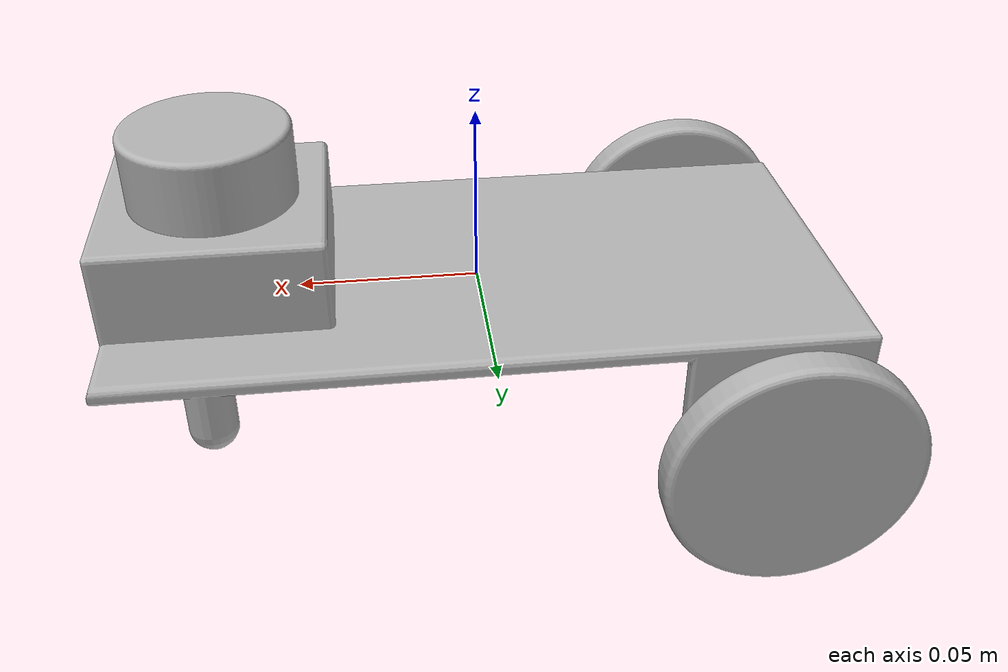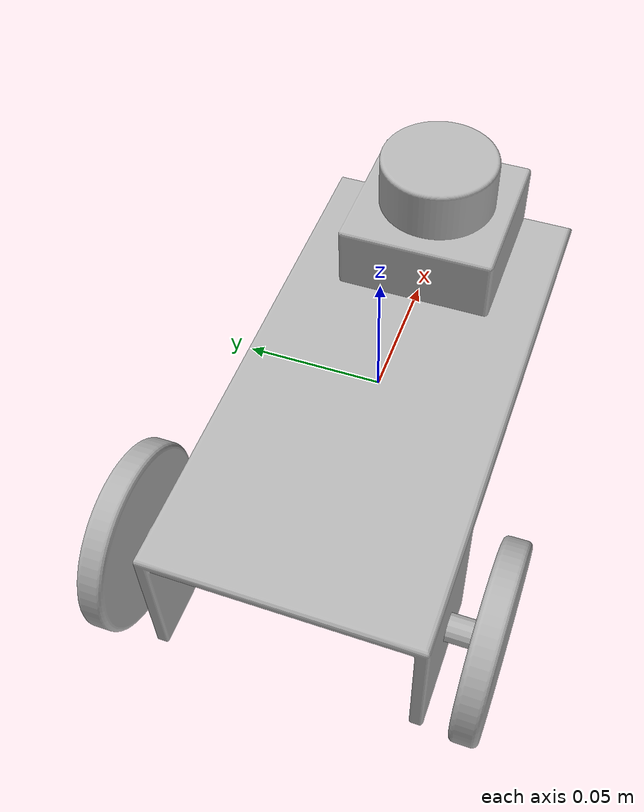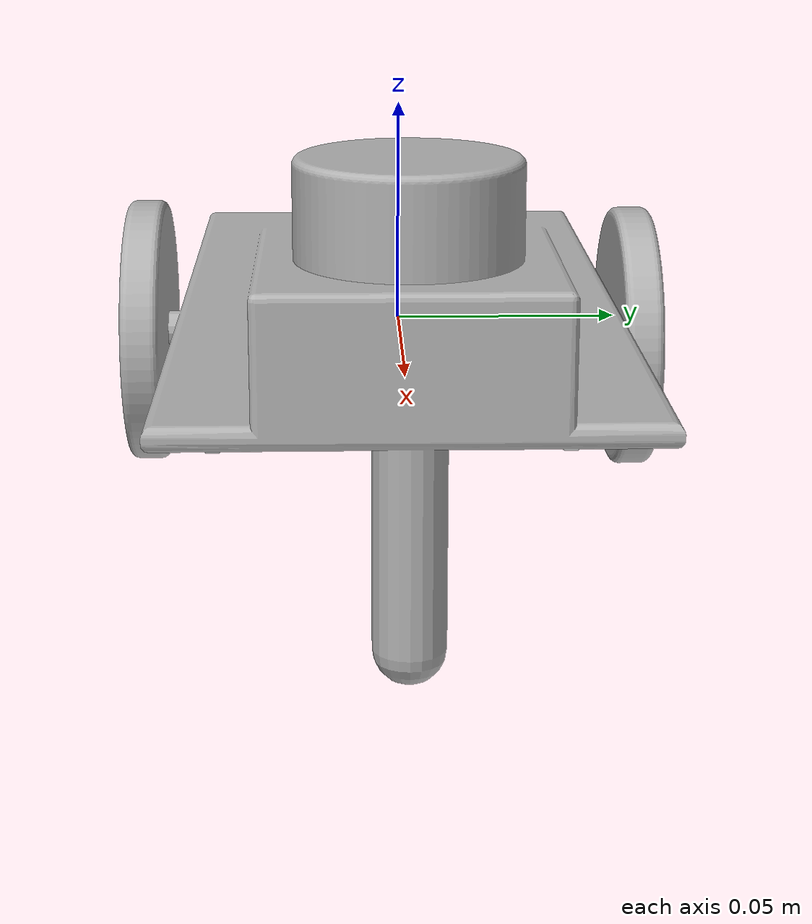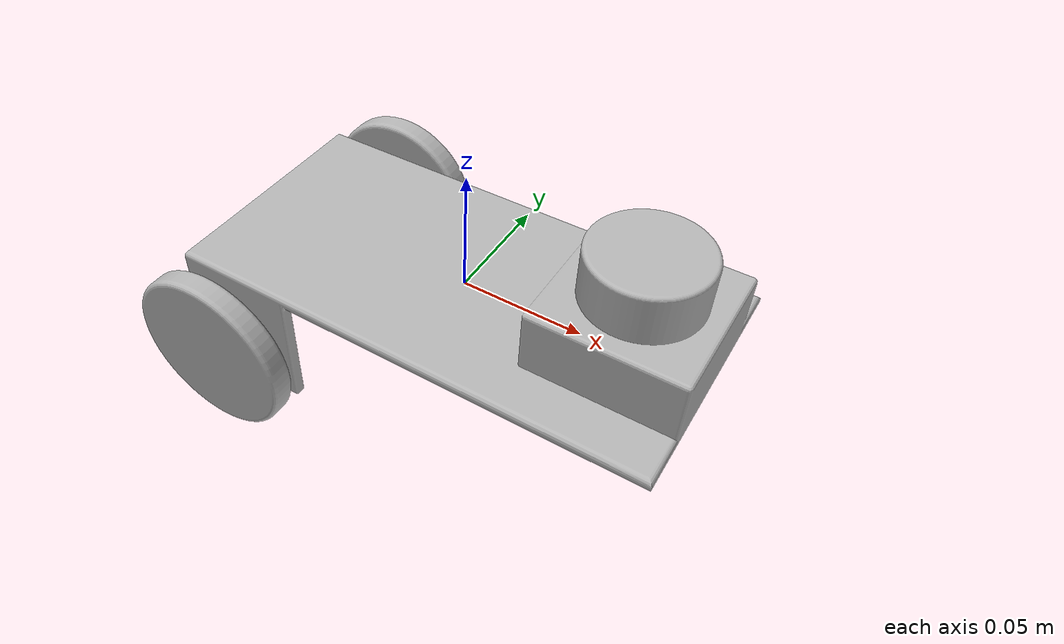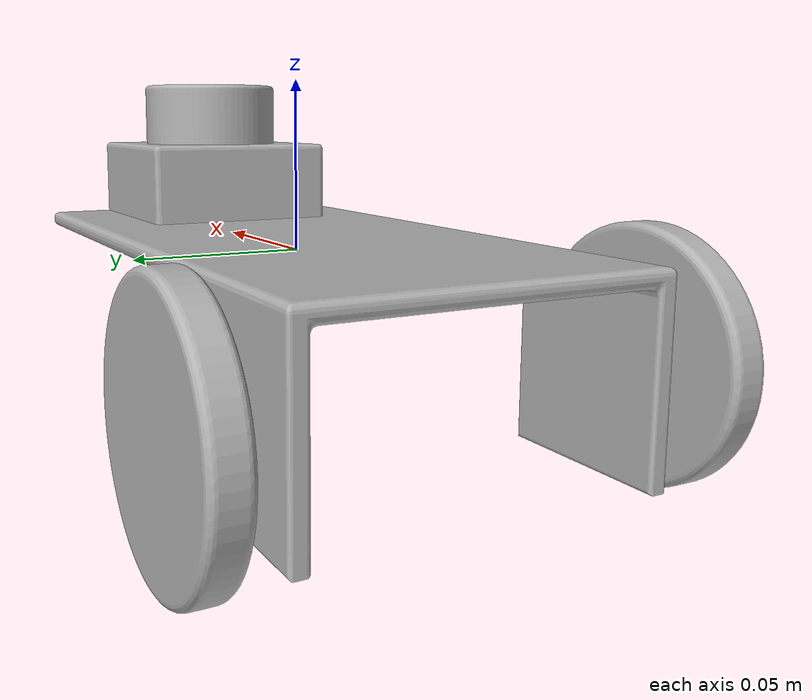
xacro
<?xml version="1.0" ?>
<robot name="roslogh" xmlns:xacro="http://www.ros.org/wiki/xacro">

<xacro:include filename="$(find roslogh_description)/urdf/materials.xacro" />
<xacro:include filename="$(find roslogh_description)/urdf/roslogh.trans" />
<xacro:include filename="$(find roslogh_description)/urdf/roslogh.gazebo" />
<link name="base_link">
  <inertial>
    <origin xyz="0.02242999577947144 -6.8460879496483205e-09 0.004077074626700003" rpy="0 0 0"/>
    <mass value="1.7647631390827576"/>
    <inertia ixx="0.001798" iyy="0.007507" izz="0.008373" ixy="-0.0" iyz="1e-06" ixz="-0.000936"/>
  </inertial>
  <visual>
    <origin xyz="0 0 0" rpy="0 0 0"/>
    <geometry>
      <mesh filename="package://roslogh_description/meshes/base_link.stl" scale="0.001 0.001 0.001"/>
    </geometry>
    <material name="silver"/>
  </visual>
  <collision>
    <origin xyz="0 0 0" rpy="0 0 0"/>
    <geometry>
      <mesh filename="package://roslogh_description/meshes/base_link.stl" scale="0.001 0.001 0.001"/>
    </geometry>
  </collision>
</link>

<link name="left_1">
  <inertial>
    <origin xyz="0.0 0.0050000000000000044 -6.938893903907228e-18" rpy="0 0 0"/>
    <mass value="0.299177486388208"/>
    <inertia ixx="9.3e-05" iyy="0.000182" izz="9.3e-05" ixy="0.0" iyz="0.0" ixz="0.0"/>
  </inertial>
  <visual>
    <origin xyz="0.075 -0.06 0.025" rpy="0 0 0"/>
    <geometry>
      <mesh filename="package://roslogh_description/meshes/left_1.stl" scale="0.001 0.001 0.001"/>
    </geometry>
    <material name="silver"/>
  </visual>
  <collision>
    <origin xyz="0.075 -0.06 0.025" rpy="0 0 0"/>
    <geometry>
      <mesh filename="package://roslogh_description/meshes/left_1.stl" scale="0.001 0.001 0.001"/>
    </geometry>
  </collision>
</link>

<link name="right_1">
  <inertial>
    <origin xyz="-2.7755575615628914e-17 -0.0050000000000000044 0.0" rpy="0 0 0"/>
    <mass value="0.2991774863882081"/>
    <inertia ixx="9.3e-05" iyy="0.000182" izz="9.3e-05" ixy="0.0" iyz="0.0" ixz="-0.0"/>
  </inertial>
  <visual>
    <origin xyz="0.075 0.06 0.0225" rpy="0 0 0"/>
    <geometry>
      <mesh filename="package://roslogh_description/meshes/right_1.stl" scale="0.001 0.001 0.001"/>
    </geometry>
    <material name="silver"/>
  </visual>
  <collision>
    <origin xyz="0.075 0.06 0.0225" rpy="0 0 0"/>
    <geometry>
      <mesh filename="package://roslogh_description/meshes/right_1.stl" scale="0.001 0.001 0.001"/>
    </geometry>
  </collision>
</link>

<link name="lidar_1">
  <inertial>
    <origin xyz="-4.163336342344337e-17 0.0 0.009979528865946961" rpy="0 0 0"/>
    <mass value="0.249169834758972"/>
    <inertia ixx="4e-05" iyy="4e-05" izz="6.3e-05" ixy="-0.0" iyz="0.0" ixz="-0.0"/>
  </inertial>
  <visual>
    <origin xyz="-0.07 -0.0 -0.03" rpy="0 0 0"/>
    <geometry>
      <mesh filename="package://roslogh_description/meshes/lidar_1.stl" scale="0.001 0.001 0.001"/>
    </geometry>
    <material name="silver"/>
  </visual>
  <collision>
    <origin xyz="-0.07 -0.0 -0.03" rpy="0 0 0"/>
    <geometry>
      <mesh filename="package://roslogh_description/meshes/lidar_1.stl" scale="0.001 0.001 0.001"/>
    </geometry>
  </collision>
</link>

<joint name="Rev1" type="continuous">
  <origin xyz="-0.075 0.06 -0.025" rpy="0 0 0"/>
  <parent link="base_link"/>
  <child link="left_1"/>
  <axis xyz="0.0 1.0 0.0"/>
</joint>

<joint name="Rev2" type="continuous">
  <origin xyz="-0.075 -0.06 -0.0225" rpy="0 0 0"/>
  <parent link="base_link"/>
  <child link="right_1"/>
  <axis xyz="0.0 1.0 0.0"/>
</joint>

<joint name="Rigid3" type="fixed">
  <origin xyz="0.07 0.0 0.03" rpy="0 0 0"/>
  <parent link="base_link"/>
  <child link="lidar_1"/>
</joint>

</robot>

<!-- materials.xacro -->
<robot name="roslogh" xmlns:xacro="http://www.ros.org/wiki/xacro" >

<material name="silver">
  <color rgba="0.700 0.700 0.700 1.000"/>
</material>

</robot>

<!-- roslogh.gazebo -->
<robot name="roslogh" xmlns:xacro="http://www.ros.org/wiki/xacro" >

<xacro:property name="body_color" value="Gazebo/Silver" />

<gazebo>
  <plugin name="control" filename="libgazebo_ros_control.so"/>
</gazebo>
<gazebo reference="base_link">
  <material>${body_color}</material>
  <mu1>3500</mu1>
  <mu2>3500</mu2>
  <selfCollide>true</selfCollide>
  <gravity>true</gravity>
</gazebo>

<gazebo reference="left_1">
  <material>${body_color}</material>
  <mu1>3500</mu1>
  <mu2>3500</mu2>
  <selfCollide>true</selfCollide>
</gazebo>

<gazebo reference="right_1">
  <material>${body_color}</material>
  <mu1>3500</mu1>
  <mu2>3500</mu2>
  <selfCollide>true</selfCollide>
</gazebo>

<gazebo reference="lidar_1">
  <material>${body_color}</material>
  <mu1>0.2</mu1>
  <mu2>0.2</mu2>
  <selfCollide>true</selfCollide>
</gazebo>
  <gazebo>
  <plugin name="differential_drive_controller" filename="libgazebo_ros_diff_drive.so">

    <!-- Plugin update rate in Hz -->
    <updateRate>${1000}</updateRate>

    <!-- Name of left joint, defaults to `left_joint` -->
    <leftJoint>Rev1</leftJoint>

    <!-- Name of right joint, defaults to `right_joint` -->
    <rightJoint>Rev2</rightJoint>

    <!-- The distance from the center of one wheel to the other, in meters, defaults to 0.34 m -->
    <wheelSeparation>0.5380</wheelSeparation>

    <!-- Diameter of the wheels, in meters, defaults to 0.15 m -->
    <wheelDiameter>0.2410</wheelDiameter>

    <!-- Wheel acceleration, in rad/s^2, defaults to 0.0 rad/s^2 -->
    <wheelAcceleration>1.0</wheelAcceleration>

    <!-- Maximum torque which the wheels can produce, in Nm, defaults to 5 Nm -->
    <wheelTorque>20</wheelTorque>

    <!-- Topic to receive geometry_msgs/Twist message commands, defaults to `cmd_vel` -->
    <commandTopic>cmd_vel</commandTopic>

    <!-- Topic to publish nav_msgs/Odometry messages, defaults to `odom` -->
    <odometryTopic>odom</odometryTopic>

    <!-- Odometry frame, defaults to `odom` -->
    <odometryFrame>odom</odometryFrame>

    <!-- Robot frame to calculate odometry from, defaults to `base_footprint` -->
    <robotBaseFrame>base_footprint</robotBaseFrame>

    <!-- Odometry source, 0 for ENCODER, 1 for WORLD, defaults to WORLD -->
    <odometrySource>1</odometrySource>

    <!-- Set to true to publish transforms for the wheel links, defaults to false -->
    <publishWheelTF>true</publishWheelTF>

    <!-- Set to true to publish transforms for the odometry, defaults to true -->
    <publishOdom>true</publishOdom>

    <!-- Set to true to publish sensor_msgs/JointState on /joint_states for the wheel joints, defaults to false -->
    <publishWheelJointState>true</publishWheelJointState>

    <!-- Set to true to swap right and left wheels, defaults to true -->
    <legacyMode>false</legacyMode>
  </plugin>
</gazebo>

</robot>
